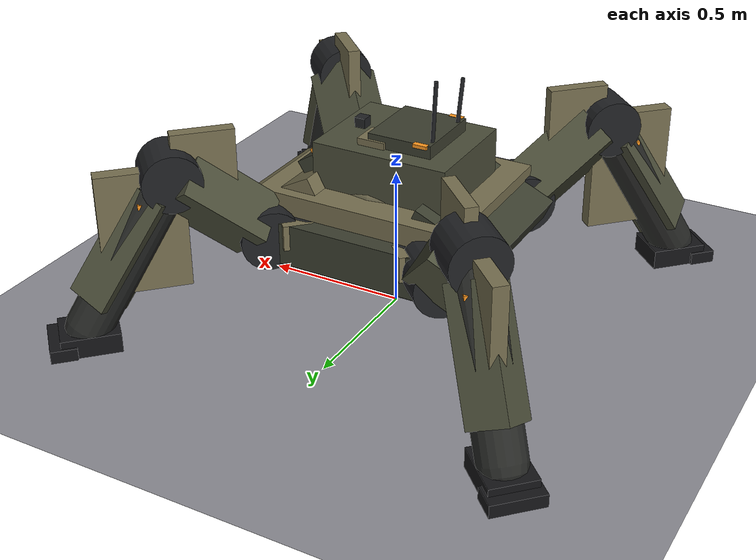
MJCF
<mujoco model="spyder12-bastion">
  <compiler angle="degree" coordinate="local" inertiafromgeom="true"/>
  <option integrator="RK4" timestep="0.01"/>
  <visual><global offwidth="1000" offheight="700"/></visual>

  <default>
    <joint armature="1" damping="1" stiffness="30" limited="true"/>
    <geom condim="3" density="5.0" friction="1 0.5 0.5" margin="0.01" rgba="0.55 0.55 0.58 1"/>
    <motor ctrllimited="true" ctrlrange="-1 1" gear="150"/>
    <default class="skin">
      <!-- rgba must stay at MuJoCo's internal default (0.5 0.5 0.5 1) or it
           overrides every material color on these geoms -->
      <geom contype="0" conaffinity="0" density="0" group="1" rgba="0.5 0.5 0.5 1"/>
    </default>
  </default>

  <asset>
    <material name="drab"     rgba="0.295 0.305 0.225 1" specular="0.18" shininess="0.2"/>
    <material name="khaki"    rgba="0.47 0.44 0.315 1" specular="0.15" shininess="0.15"/>
    <material name="panel"    rgba="0.235 0.245 0.185 1" specular="0.22" shininess="0.25"/>
    <material name="gunmetal" rgba="0.13 0.135 0.145 1" specular="0.45" shininess="0.4"/>
    <material name="rubber"   rgba="0.085 0.085 0.095 1" specular="0.05" shininess="0.05"/>
    <material name="amber"    rgba="1 0.60 0.12 1" emission="1"/>
    <texture builtin="gradient" height="100" rgb1="0.11 0.105 0.10" rgb2="0.015 0.015 0.025" type="skybox" width="100"/>
    <texture builtin="flat" height="4" width="4" name="texplane" rgb1="0.185 0.18 0.175"/>
    <material name="MatPlane" reflectance="0.10" texture="texplane" texrepeat="1 1"/>
  </asset>

  <worldbody>
    <body name="torso" pos="0 0 0.35">
      <joint armature="0" damping="0" stiffness="0" limited="false" margin="0.01" name="root" pos="0 0 0" type="free"/>
      <geom name="torso_geom" pos="0 0 0" size="0.25" type="sphere" rgba="0.40 0.38 0.28 1"/>
      <geom name="stub_1" fromto="0 0 0 0.2 0.2 0" size="0.08" type="capsule" rgba="0.15 0.155 0.145 1"/>
      <geom name="stub_2" fromto="0 0 0 -0.2 0.2 0" size="0.08" type="capsule" rgba="0.15 0.155 0.145 1"/>
      <geom name="stub_3" fromto="0 0 0 -0.2 -0.2 0" size="0.08" type="capsule" rgba="0.15 0.155 0.145 1"/>
      <geom name="stub_4" fromto="0 0 0 0.2 -0.2 0" size="0.08" type="capsule" rgba="0.15 0.155 0.145 1"/>
      <!-- lower chassis: wide khaki slab + belly + big glacis + rear ramp + fenders -->
      <geom class="skin" type="box" size="0.37 0.30 0.105" pos="0 0 0.035" material="khaki"/>
      <geom class="skin" type="box" size="0.30 0.245 0.085" pos="0 0 -0.085" material="panel"/>
      <geom class="skin" type="box" size="0.185 0.26 0.05" pos="0.335 0 0.065" axisangle="0 1 0 28" material="khaki"/>
      <geom class="skin" type="box" size="0.15 0.25 0.04" pos="-0.325 0 0.075" axisangle="0 1 0 -24" material="panel"/>
      <geom class="skin" type="box" size="0.38 0.05 0.075" pos="0 0.315 -0.01" material="panel"/>
      <geom class="skin" type="box" size="0.38 0.05 0.075" pos="0 -0.315 -0.01" material="panel"/>
      <!-- upper hull (turret body): darker drab, own glacis, hatch, sensor mast -->
      <geom class="skin" type="box" size="0.245 0.195 0.085" pos="-0.035 0 0.215" material="drab"/>
      <geom class="skin" type="box" size="0.085 0.155 0.045" pos="0.20 0 0.20" axisangle="0 1 0 32" material="panel"/>
      <geom class="skin" type="box" size="0.115 0.13 0.03" pos="-0.08 0 0.315" material="panel"/>
      <geom class="skin" type="box" size="0.05 0.05 0.012" pos="0.02 0.09 0.312" material="khaki"/>
      <geom class="skin" type="cylinder" fromto="-0.18 0.09 0.30 -0.20 0.105 0.56" size="0.007" material="gunmetal"/>
      <geom class="skin" type="cylinder" fromto="-0.18 -0.09 0.30 -0.195 -0.10 0.50" size="0.007" material="gunmetal"/>
      <geom class="skin" type="box" size="0.02 0.02 0.02" pos="0.13 0 0.315" material="gunmetal"/>
      <!-- amber: wide chassis headlight bars, turret visor slit, deck dots -->
      <geom class="skin" type="box" size="0.014 0.085 0.016" pos="0.392 0.155 0.085" axisangle="0 1 0 28" material="amber"/>
      <geom class="skin" type="box" size="0.014 0.085 0.016" pos="0.392 -0.155 0.085" axisangle="0 1 0 28" material="amber"/>
      <geom class="skin" type="box" size="0.010 0.12 0.012" pos="0.253 0 0.225" axisangle="0 1 0 32" material="amber"/>
      <geom class="skin" type="box" size="0.025 0.010 0.006" pos="-0.16 0.13 0.34" material="amber"/>
      <geom class="skin" type="box" size="0.025 0.010 0.006" pos="-0.16 -0.13 0.34" material="amber"/>

      <body name="coxa_1" pos="0.2 0.2 0">
        <joint name="hip_1" type="hinge" axis="0 0 1" pos="0 0 0" range="-40 40"/>
        <geom name="coxa_1_geom" fromto="0 0 0 0.12 0.12 0" size="0.08" type="capsule" rgba="0.15 0.155 0.145 1"/>
        <geom class="skin" type="cylinder" fromto="0 0 -0.065 0 0 0.065" size="0.115" material="gunmetal"/>
        <geom class="skin" type="box" size="0.075 0.115 0.045" pos="0.045 0.045 0.02" axisangle="0 0 1 45" material="khaki"/>
        <body name="femur_1" pos="0.12 0.12 0">
          <joint name="lift_1" type="hinge" axis="-1 1 0" pos="0 0 0" range="-60 60"/>
          <geom name="femur_1_geom" fromto="0 0 0 0.22 0.22 0.25" size="0.08" type="capsule" rgba="0.15 0.155 0.145 1"/>
          <geom class="skin" type="box" fromto="0.02 0.02 0.025 0.2 0.2 0.235" size="0.088 0.052" material="drab"/>
          <geom class="skin" type="box" size="0.105 0.022 0.095" pos="0.14 0.14 0.30" axisangle="0 0 1 45" material="khaki"/>
          <geom class="skin" type="cylinder" fromto="0.06 -0.06 0 -0.06 0.06 0" size="0.105" material="gunmetal"/>
          <body name="tibia_1" pos="0.22 0.22 0.25">
            <joint name="knee_1" type="hinge" axis="-1 1 0" pos="0 0 0" range="-50 50"/>
            <geom name="tibia_1_geom" fromto="0 0 0 0.22 0.22 -0.52" size="0.08" type="capsule" rgba="0.15 0.155 0.145 1"/>
            <geom class="skin" type="cylinder" fromto="0.06 -0.06 0 -0.06 0.06 0" size="0.10" material="gunmetal"/>
            <geom class="skin" type="box" fromto="0.03 0.03 -0.06 0.19 0.19 -0.42" size="0.072 0.048" material="drab"/>
            <geom class="skin" type="box" size="0.145 0.026 0.215" pos="0.07 0.07 -0.185" axisangle="0 0 1 45" material="khaki"/>
            <geom class="skin" type="box" size="0.10 0.018 0.145" pos="0.085 0.085 -0.155" axisangle="0 0 1 45" material="panel"/>
            <geom class="skin" type="box" size="0.016 0.06 0.008" pos="0.07 0.07 -0.075" axisangle="0 0 1 45" material="amber"/>
            <geom class="skin" type="box" size="0.10 0.08 0.035" pos="0.22 0.22 -0.555" axisangle="0 0 1 45" material="rubber"/>
            <geom class="skin" type="box" size="0.045 0.09 0.022" pos="0.285 0.285 -0.568" axisangle="0 0 1 45" material="rubber"/>
          </body>
        </body>
      </body>
      <body name="coxa_2" pos="-0.2 0.2 0">
        <joint name="hip_2" type="hinge" axis="0 0 1" pos="0 0 0" range="-40 40"/>
        <geom name="coxa_2_geom" fromto="0 0 0 -0.12 0.12 0" size="0.08" type="capsule" rgba="0.15 0.155 0.145 1"/>
        <geom class="skin" type="cylinder" fromto="0 0 -0.065 0 0 0.065" size="0.115" material="gunmetal"/>
        <geom class="skin" type="box" size="0.075 0.115 0.045" pos="-0.045 0.045 0.02" axisangle="0 0 1 135" material="khaki"/>
        <body name="femur_2" pos="-0.12 0.12 0">
          <joint name="lift_2" type="hinge" axis="1 1 0" pos="0 0 0" range="-60 60"/>
          <geom name="femur_2_geom" fromto="0 0 0 -0.22 0.22 0.25" size="0.08" type="capsule" rgba="0.15 0.155 0.145 1"/>
          <geom class="skin" type="box" fromto="-0.02 0.02 0.025 -0.2 0.2 0.235" size="0.088 0.052" material="drab"/>
          <geom class="skin" type="box" size="0.105 0.022 0.095" pos="-0.14 0.14 0.30" axisangle="0 0 1 135" material="khaki"/>
          <geom class="skin" type="cylinder" fromto="0.06 -0.06 0 -0.06 0.06 0" size="0.105" material="gunmetal"/>
          <body name="tibia_2" pos="-0.22 0.22 0.25">
            <joint name="knee_2" type="hinge" axis="1 1 0" pos="0 0 0" range="-50 50"/>
            <geom name="tibia_2_geom" fromto="0 0 0 -0.22 0.22 -0.52" size="0.08" type="capsule" rgba="0.15 0.155 0.145 1"/>
            <geom class="skin" type="cylinder" fromto="0.06 -0.06 0 -0.06 0.06 0" size="0.10" material="gunmetal"/>
            <geom class="skin" type="box" fromto="-0.03 0.03 -0.06 -0.19 0.19 -0.42" size="0.072 0.048" material="drab"/>
            <geom class="skin" type="box" size="0.145 0.026 0.215" pos="-0.07 0.07 -0.185" axisangle="0 0 1 135" material="khaki"/>
            <geom class="skin" type="box" size="0.10 0.018 0.145" pos="-0.085 0.085 -0.155" axisangle="0 0 1 135" material="panel"/>
            <geom class="skin" type="box" size="0.016 0.06 0.008" pos="-0.07 0.07 -0.075" axisangle="0 0 1 135" material="amber"/>
            <geom class="skin" type="box" size="0.10 0.08 0.035" pos="-0.22 0.22 -0.555" axisangle="0 0 1 135" material="rubber"/>
            <geom class="skin" type="box" size="0.045 0.09 0.022" pos="-0.285 0.285 -0.568" axisangle="0 0 1 135" material="rubber"/>
          </body>
        </body>
      </body>
      <body name="coxa_3" pos="-0.2 -0.2 0">
        <joint name="hip_3" type="hinge" axis="0 0 1" pos="0 0 0" range="-40 40"/>
        <geom name="coxa_3_geom" fromto="0 0 0 -0.12 -0.12 0" size="0.08" type="capsule" rgba="0.15 0.155 0.145 1"/>
        <geom class="skin" type="cylinder" fromto="0 0 -0.065 0 0 0.065" size="0.115" material="gunmetal"/>
        <geom class="skin" type="box" size="0.075 0.115 0.045" pos="-0.045 -0.045 0.02" axisangle="0 0 1 225" material="khaki"/>
        <body name="femur_3" pos="-0.12 -0.12 0">
          <joint name="lift_3" type="hinge" axis="-1 1 0" pos="0 0 0" range="-60 60"/>
          <geom name="femur_3_geom" fromto="0 0 0 -0.22 -0.22 0.25" size="0.08" type="capsule" rgba="0.15 0.155 0.145 1"/>
          <geom class="skin" type="box" fromto="-0.02 -0.02 0.025 -0.2 -0.2 0.235" size="0.088 0.052" material="drab"/>
          <geom class="skin" type="box" size="0.105 0.022 0.095" pos="-0.14 -0.14 0.30" axisangle="0 0 1 225" material="khaki"/>
          <geom class="skin" type="cylinder" fromto="-0.06 0.06 0 0.06 -0.06 0" size="0.105" material="gunmetal"/>
          <body name="tibia_3" pos="-0.22 -0.22 0.25">
            <joint name="knee_3" type="hinge" axis="-1 1 0" pos="0 0 0" range="-50 50"/>
            <geom name="tibia_3_geom" fromto="0 0 0 -0.22 -0.22 -0.52" size="0.08" type="capsule" rgba="0.15 0.155 0.145 1"/>
            <geom class="skin" type="cylinder" fromto="-0.06 0.06 0 0.06 -0.06 0" size="0.10" material="gunmetal"/>
            <geom class="skin" type="box" fromto="-0.03 -0.03 -0.06 -0.19 -0.19 -0.42" size="0.072 0.048" material="drab"/>
            <geom class="skin" type="box" size="0.145 0.026 0.215" pos="-0.07 -0.07 -0.185" axisangle="0 0 1 225" material="khaki"/>
            <geom class="skin" type="box" size="0.10 0.018 0.145" pos="-0.085 -0.085 -0.155" axisangle="0 0 1 225" material="panel"/>
            <geom class="skin" type="box" size="0.016 0.06 0.008" pos="-0.07 -0.07 -0.075" axisangle="0 0 1 225" material="amber"/>
            <geom class="skin" type="box" size="0.10 0.08 0.035" pos="-0.22 -0.22 -0.555" axisangle="0 0 1 225" material="rubber"/>
            <geom class="skin" type="box" size="0.045 0.09 0.022" pos="-0.285 -0.285 -0.568" axisangle="0 0 1 225" material="rubber"/>
          </body>
        </body>
      </body>
      <body name="coxa_4" pos="0.2 -0.2 0">
        <joint name="hip_4" type="hinge" axis="0 0 1" pos="0 0 0" range="-40 40"/>
        <geom name="coxa_4_geom" fromto="0 0 0 0.12 -0.12 0" size="0.08" type="capsule" rgba="0.15 0.155 0.145 1"/>
        <geom class="skin" type="cylinder" fromto="0 0 -0.065 0 0 0.065" size="0.115" material="gunmetal"/>
        <geom class="skin" type="box" size="0.075 0.115 0.045" pos="0.045 -0.045 0.02" axisangle="0 0 1 315" material="khaki"/>
        <body name="femur_4" pos="0.12 -0.12 0">
          <joint name="lift_4" type="hinge" axis="1 1 0" pos="0 0 0" range="-60 60"/>
          <geom name="femur_4_geom" fromto="0 0 0 0.22 -0.22 0.25" size="0.08" type="capsule" rgba="0.15 0.155 0.145 1"/>
          <geom class="skin" type="box" fromto="0.02 -0.02 0.025 0.2 -0.2 0.235" size="0.088 0.052" material="drab"/>
          <geom class="skin" type="box" size="0.105 0.022 0.095" pos="0.14 -0.14 0.30" axisangle="0 0 1 315" material="khaki"/>
          <geom class="skin" type="cylinder" fromto="-0.06 0.06 0 0.06 -0.06 0" size="0.105" material="gunmetal"/>
          <body name="tibia_4" pos="0.22 -0.22 0.25">
            <joint name="knee_4" type="hinge" axis="1 1 0" pos="0 0 0" range="-50 50"/>
            <geom name="tibia_4_geom" fromto="0 0 0 0.22 -0.22 -0.52" size="0.08" type="capsule" rgba="0.15 0.155 0.145 1"/>
            <geom class="skin" type="cylinder" fromto="-0.06 0.06 0 0.06 -0.06 0" size="0.10" material="gunmetal"/>
            <geom class="skin" type="box" fromto="0.03 -0.03 -0.06 0.19 -0.19 -0.42" size="0.072 0.048" material="drab"/>
            <geom class="skin" type="box" size="0.145 0.026 0.215" pos="0.07 -0.07 -0.185" axisangle="0 0 1 315" material="khaki"/>
            <geom class="skin" type="box" size="0.10 0.018 0.145" pos="0.085 -0.085 -0.155" axisangle="0 0 1 315" material="panel"/>
            <geom class="skin" type="box" size="0.016 0.06 0.008" pos="0.07 -0.07 -0.075" axisangle="0 0 1 315" material="amber"/>
            <geom class="skin" type="box" size="0.10 0.08 0.035" pos="0.22 -0.22 -0.555" axisangle="0 0 1 315" material="rubber"/>
            <geom class="skin" type="box" size="0.045 0.09 0.022" pos="0.285 -0.285 -0.568" axisangle="0 0 1 315" material="rubber"/>
          </body>
        </body>
      </body>
    </body>
  </worldbody>

  <actuator>
    <motor name="hip_1"  joint="hip_1"/>
    <motor name="lift_1" joint="lift_1"/>
    <motor name="knee_1" joint="knee_1"/>
    <motor name="hip_2"  joint="hip_2"/>
    <motor name="lift_2" joint="lift_2"/>
    <motor name="knee_2" joint="knee_2"/>
    <motor name="hip_3"  joint="hip_3"/>
    <motor name="lift_3" joint="lift_3"/>
    <motor name="knee_3" joint="knee_3"/>
    <motor name="hip_4"  joint="hip_4"/>
    <motor name="lift_4" joint="lift_4"/>
    <motor name="knee_4" joint="knee_4"/>
  </actuator>

  <worldbody>
    <light cutoff="100" diffuse="1.05 0.98 0.86" dir="-0.3 0.2 -1" directional="true" pos="1 -0.8 1.7" specular="0.35 0.35 0.35"/>
    <light diffuse="0.40 0.36 0.30" dir="0.5 0.5 -1" directional="true" pos="-1 1 1.2"/>
    <geom conaffinity="1" condim="3" material="MatPlane" name="floor" pos="0 0 0" size="40 40 40" type="plane"/>
  </worldbody>
</mujoco>
